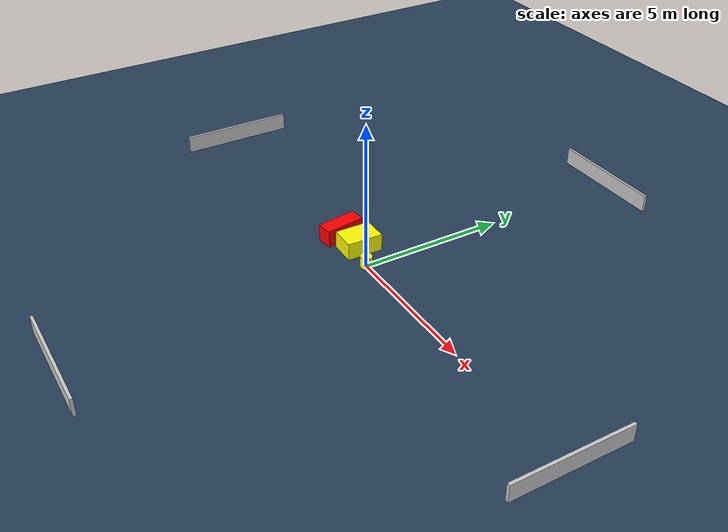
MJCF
<?xml version="1.0" ?>
<mujoco model="generated_environment">
  <option timestep="0.01" integrator="RK4" cone="elliptic"/>
  <default>
    <geom density="1"/>
  </default>
  <asset>
    <texture builtin="gradient" height="3072" name="skybox" rgb1="0.3 0.5 0.7" rgb2="0 0 0" type="skybox" width="512"/>
    <texture builtin="checker" height="300" name="groundplane" rgb1="0.2 0.3 0.4" rgb2="0.1 0.2 0.3" type="2d" width="300"/>
    <material name="groundplane" reflectance="0.2" texrepeat="5 5" texture="groundplane"/>
  </asset>
  <worldbody>
    <light dir="0 0 -1" directional="true" pos="0 0 1.5"/>
    <geom condim="3" friction="0.5 0.005 0.001" material="groundplane" name="floor" pos="0 0 0" size="0 0 0.05" type="plane"/>
    <body name="walls">
      <geom name="wall_1" condim="4" pos="-10.0 0.0 0.3" rgba="0.800000011920929 0.800000011920929 0.800000011920929 1.0" size="0.05 2.0 0.3" type="box"/>
      <geom name="wall_2" condim="4" pos="10.0 0.0 0.3" rgba="0.800000011920929 0.800000011920929 0.800000011920929 1.0" size="0.05 2.0 0.3" type="box"/>
      <geom name="wall_3" condim="4" pos="0.0 -10.0 0.3" rgba="0.800000011920929 0.800000011920929 0.800000011920929 1.0" size="2.0 0.05 0.3" type="box"/>
      <geom name="wall_4" condim="4" pos="0.0 10.0 0.3" rgba="0.800000011920929 0.800000011920929 0.800000011920929 1.0" size="2.0 0.05 0.3" type="box"/>
    </body>
    <body name="robot">
      <joint name="joint_x" type="slide" pos="0 0 0" axis="1 0 0"/>
      <joint name="joint_y" type="slide" pos="0 0 0" axis="0 1 0"/>
      <geom name="robot" type="cylinder" pos="0.0 0.0 0.2" size="0.2 0.2 0.0" mass="5.0" friction="1.0 0.005 0.0001" condim="4" rgba="1.0 1.0 0.0 1.0"/>
    </body>
    <body name="obstacle_1_movable">
      <geom name="obstacle_1_movable" condim="4" pos="-0.9953306626494096 0.29897441614316705 0.3" euler="0 0 359.40412573955433" friction="0.0 0.005 0.001" rgba="1.0 1.0 0.0 1.0" size="0.4372030001083995 0.6164512783392555 0.3" type="box" mass="0.1"/>
      <joint type="free"/>
    </body>
    <body name="obstacle_2_static">
      <geom name="obstacle_2_static" condim="4" pos="-1.9034612227658612 0.1413249011434348 0.3" euler="0 0 188.32325566747255" friction="0.0 0.005 0.001" rgba="1.0 0.0 0.0 1.0" size="0.2727230808611796 0.691728981742878 0.3" type="box"/>
    </body>
  </worldbody>
  <actuator>
    <motor name="actuator_x" joint="joint_x" gear="1" ctrlrange="-1 1"/>
    <motor name="actuator_y" joint="joint_y" gear="1" ctrlrange="-1 1"/>
  </actuator>
</mujoco>
